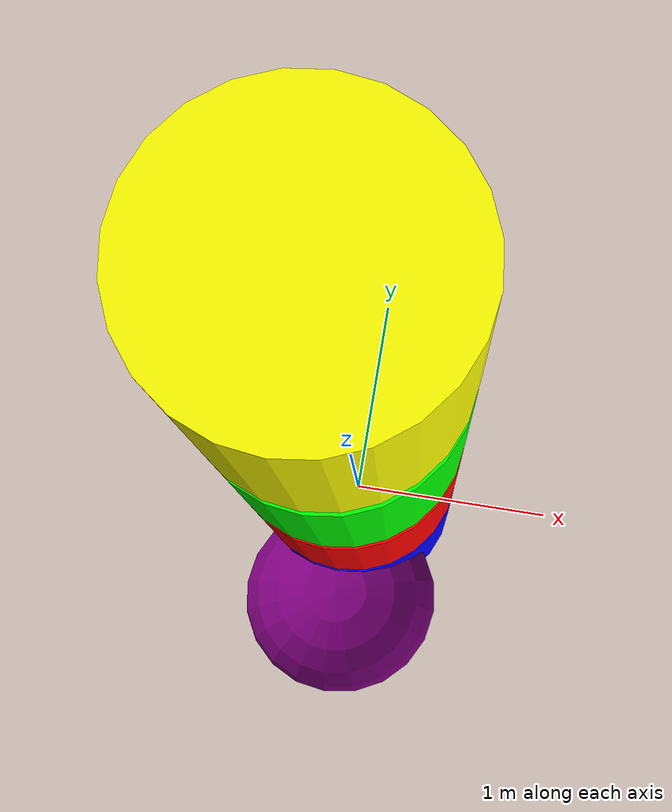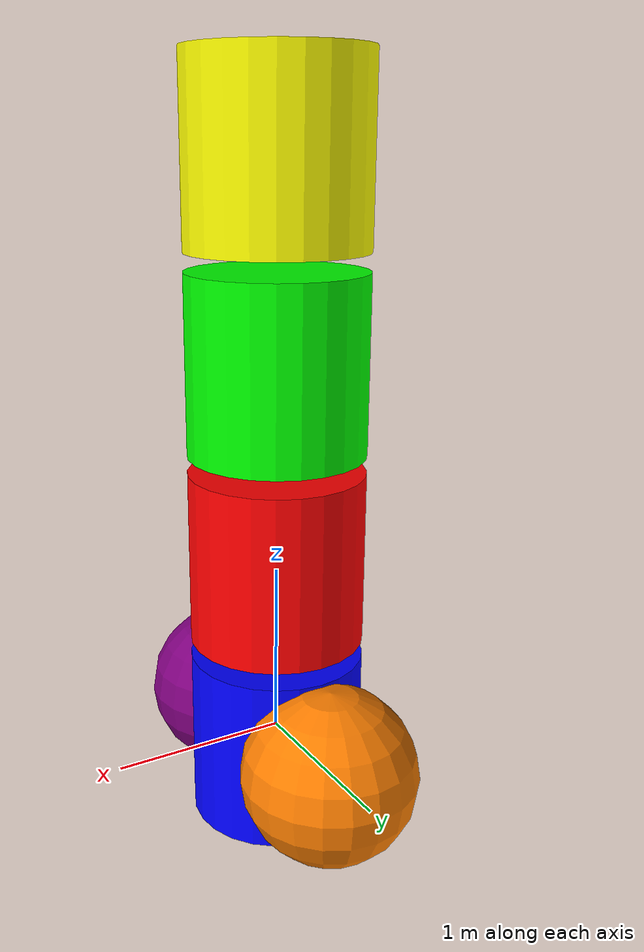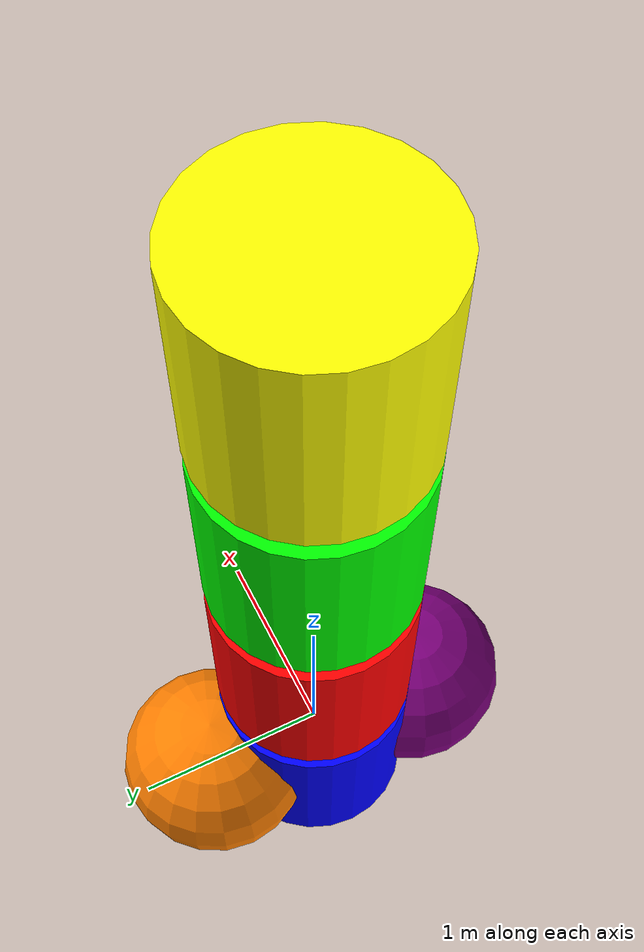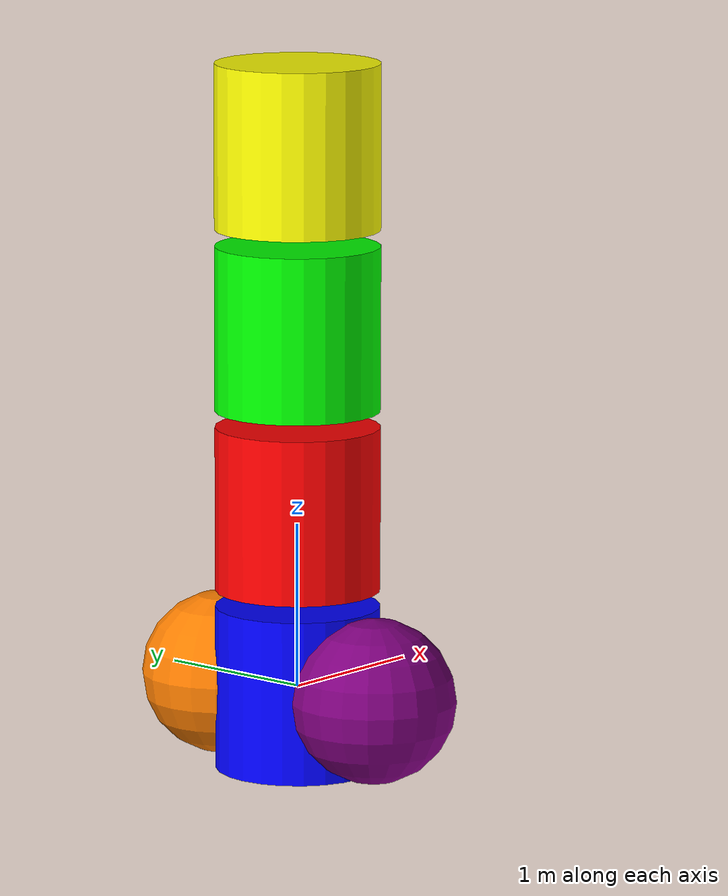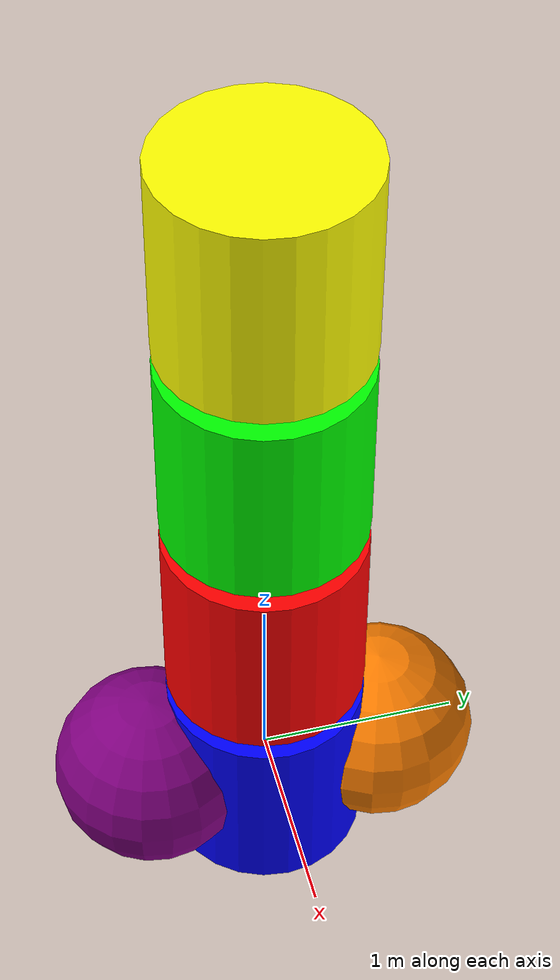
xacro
<?xml version="1.0" ?>
<robot name="robot_arm" xmlns:xacro="http://www.ros.org/wiki/xacro">

    <!-- Base Link (Fixed to Ground) -->
    <link name="base_link">
        <inertial>
            <mass value="1000.0"/>
            <inertia ixx="0.1" ixy="0.0" ixz="0.0" iyy="0.1" iyz="0.0" izz="0.1"/>
        </inertial>

        <collision>
            <geometry>
                <cylinder radius="0.5" length="1"/>
            </geometry>
        </collision>

        <visual>
            <geometry>
                <cylinder radius="0.5" length="1"/>
            </geometry>
            <material name="blue">
                <color rgba="0 0 1 1"/>
            </material>
        </visual>
    </link>

    <!-- First Joint (connects at top of base) -->
    <joint name="joint_1" type="revolute">
        <parent link="base_link"/>
        <child link="link_1"/>
        <origin xyz="0 0 1.1"/>
        <axis xyz="0 1 0"/>
        <limit lower="-3.14" upper="3.14" effort="50" velocity="2.0"/>
    </joint>

    <!-- First Arm Segment -->
    <link name="link_1">
        <inertial>
            <mass value="2.0"/>
            <inertia ixx="0.02" ixy="0.0" ixz="0.0" iyy="0.02" iyz="0.0" izz="0.02"/>
        </inertial>

        <collision>
            <geometry>
                <cylinder radius="0.5" length="1"/>
            </geometry>
        </collision>

        <visual>
            <geometry>
                <cylinder radius="0.5" length="1"/>
            </geometry>
            <material name="red">
                <color rgba="1 0 0 1"/>
            </material>
        </visual>
    </link>

    <link name="ball_left">
        <inertial>
            <mass value="0.5"/>
            <inertia ixx="0.005" ixy="0" ixz="0" iyy="0.005" iyz="0" izz="0.005"/>
        </inertial>

        <collision>
            <geometry>
            <sphere radius="0.5"/>
            </geometry>
        </collision>

        <visual>
            <geometry>
            <sphere radius="0.5"/>
            </geometry>
            <material name="orange">
            <color rgba="1 0.5 0 1"/>
            </material>
        </visual>
    </link>

    <!-- Right Ball (attached to the right side of link_1) -->
    <link name="ball_right">
        <inertial>
            <mass value="0.5"/>
            <inertia ixx="0.005" ixy="0" ixz="0" iyy="0.005" iyz="0" izz="0.005"/>
        </inertial>

        <collision>
            <geometry>
            <sphere radius="0.5"/>
            </geometry>
        </collision>

        <visual>
            <geometry>
            <sphere radius="0.5"/>
            </geometry>
            <material name="purple">
            <color rgba="0.5 0 0.5 1"/>
            </material>
        </visual>
    </link>

    <!-- Fixed Joint for the Left Ball -->
    <joint name="ball_left_joint" type="fixed">
        <!-- Attach the ball to link_1 -->
        <parent link="base_link"/>
        <child link="ball_left"/>
        <origin xyz="0 0.6 0" rpy="0 0 0"/>
    </joint>

    <!-- Fixed Joint for the Right Ball -->
    <joint name="ball_right_joint" type="fixed">
        <parent link="base_link"/>
        <child link="ball_right"/>
        <origin xyz="0 -0.6 0" rpy="0 0 0"/>
    </joint>

    <joint name="joint_2" type="revolute">
        <parent link="link_1"/>
        <child link="link_2"/>
        <origin xyz="0 0 1.1"/>
        <axis xyz="0 1 0"/>
        <limit lower="-3.14" upper="3.14" effort="50" velocity="2.0"/>
    </joint>

    <!-- Second Arm Segment -->
    <link name="link_2">
        <inertial>
            <mass value="1.5"/>
            <inertia ixx="0.015" ixy="0.0" ixz="0.0" iyy="0.015" iyz="0.0" izz="0.015"/>
        </inertial>

        <collision>
            <geometry>
                <cylinder radius="0.5" length="1"/>
            </geometry>
        </collision>

        <visual>
            <geometry>
                <cylinder radius="0.5" length="1"/>
            </geometry>
            <material name="green">
                <color rgba="0 1 0 1"/>
            </material>
        </visual>
    </link>

    <!-- Third Joint (connects at top of second link) -->
    <joint name="joint_3" type="revolute">
        <parent link="link_2"/>
        <child link="link_3"/>
        <origin xyz="0 0 1.1"/>
        <axis xyz="0 1 0"/>
        <limit lower="-3.14" upper="3.14" effort="50" velocity="2.0"/>
    </joint>

    <!-- Third Arm Segment (End Effector) -->
    <link name="link_3">
        <inertial>
            <mass value="1.0"/>
            <inertia ixx="0.01" ixy="0.0" ixz="0.0" iyy="0.01" iyz="0.0" izz="0.01"/>
        </inertial>

        <collision>
            <geometry>
                <cylinder radius="0.25" length="1"/>
            </geometry>
        </collision>

        <visual>
            <geometry>
                <cylinder radius="0.5" length="1"/>
            </geometry>
            <material name="yellow">
                <color rgba="1 1 0 1"/>
            </material>
        </visual>
    </link>

    <gazebo>
        <plugin name="gazebo_ros2_control" filename="libgazebo_ros2_control.so">
            <robotSimType>gazebo_ros2_control/GazeboSystem</robotSimType>
            <parameters>$(find robot_arm)/config/robot_arm_controllers.yaml</parameters>
        </plugin>
    </gazebo>

    <ros2_control name="robot_arm_control" type="system">
        <hardware>
            <plugin>gazebo_ros2_control/GazeboSystem</plugin>
        </hardware>

        <joint name="joint_1">
            <command_interface name="position">
                <param name="min">0</param>
                <param name="max">100</param>
            </command_interface>
            <state_interface name="position"/>
            <state_interface name="velocity"/>
        </joint>
        <joint name="joint_2">
            <command_interface name="position">
                <param name="min">0</param>
                <param name="max">100</param>
            </command_interface>
            <state_interface name="position"/>
            <state_interface name="velocity"/>
        </joint>
        <joint name="joint_3">
            <command_interface name="position">
                <param name="min">0</param>
                <param name="max">10</param>
            </command_interface>
            <state_interface name="position"/>
            <state_interface name="velocity"/>
        </joint>
    </ros2_control>

</robot>
